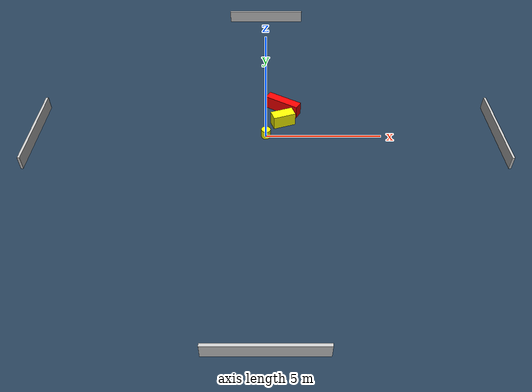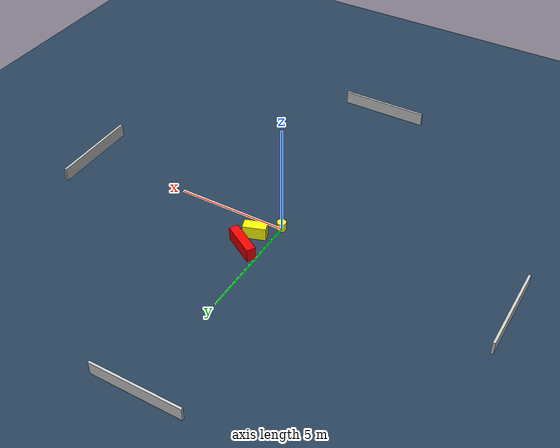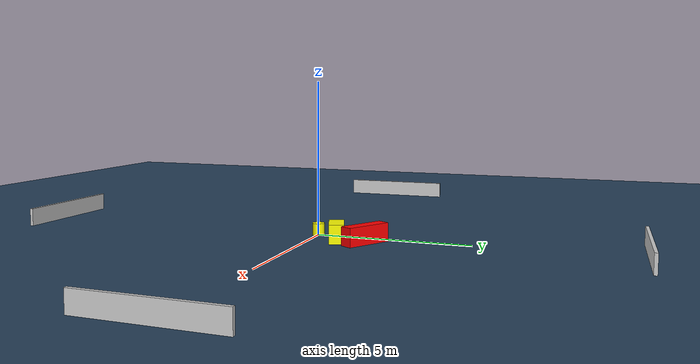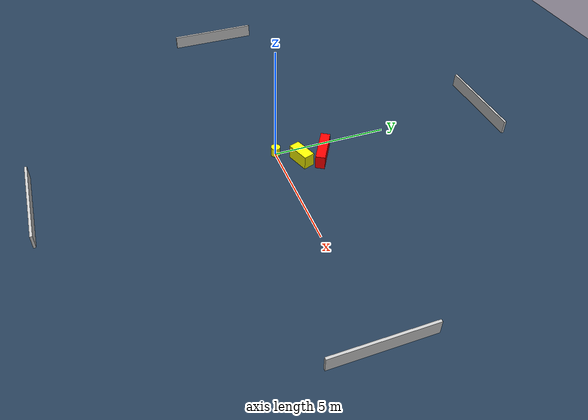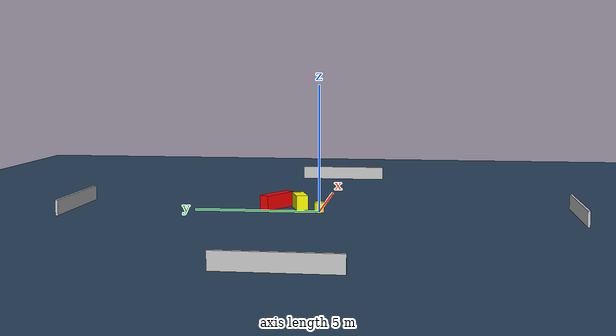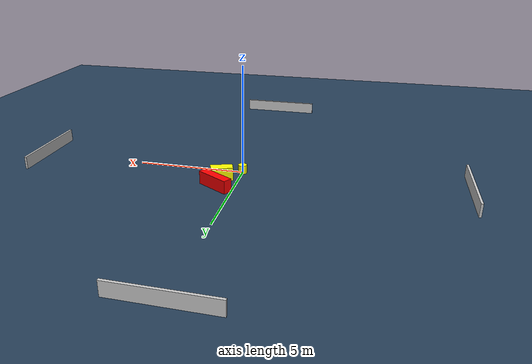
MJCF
<?xml version="1.0" ?>
<mujoco model="generated_environment">
  <option timestep="0.01" integrator="RK4" cone="elliptic"/>
  <default>
    <geom density="1"/>
  </default>
  <asset>
    <texture builtin="gradient" height="3072" name="skybox" rgb1="0.3 0.5 0.7" rgb2="0 0 0" type="skybox" width="512"/>
    <texture builtin="checker" height="300" name="groundplane" rgb1="0.2 0.3 0.4" rgb2="0.1 0.2 0.3" type="2d" width="300"/>
    <material name="groundplane" reflectance="0.2" texrepeat="5 5" texture="groundplane"/>
  </asset>
  <worldbody>
    <light dir="0 0 -1" directional="true" pos="0 0 1.5"/>
    <geom condim="3" friction="0.5 0.005 0.001" material="groundplane" name="floor" pos="0 0 0" size="0 0 0.05" type="plane"/>
    <body name="walls">
      <geom name="wall_1" condim="4" pos="-10.0 0.0 0.3" rgba="0.800000011920929 0.800000011920929 0.800000011920929 1.0" size="0.05 2.0 0.3" type="box"/>
      <geom name="wall_2" condim="4" pos="10.0 0.0 0.3" rgba="0.800000011920929 0.800000011920929 0.800000011920929 1.0" size="0.05 2.0 0.3" type="box"/>
      <geom name="wall_3" condim="4" pos="0.0 -10.0 0.3" rgba="0.800000011920929 0.800000011920929 0.800000011920929 1.0" size="2.0 0.05 0.3" type="box"/>
      <geom name="wall_4" condim="4" pos="0.0 10.0 0.3" rgba="0.800000011920929 0.800000011920929 0.800000011920929 1.0" size="2.0 0.05 0.3" type="box"/>
    </body>
    <body name="robot">
      <joint name="joint_x" type="slide" pos="0 0 0" axis="1 0 0"/>
      <joint name="joint_y" type="slide" pos="0 0 0" axis="0 1 0"/>
      <geom name="robot" type="cylinder" pos="0.0 0.0 0.2" size="0.2 0.2 0.0" mass="5.0" friction="1.0 0.005 0.0001" condim="4" rgba="1.0 1.0 0.0 1.0"/>
    </body>
    <body name="obstacle_1_movable">
      <geom name="obstacle_1_movable" condim="4" pos="0.7565630159493528 0.8826064572693653 0.3" euler="0 0 108.9154175650097" friction="0.0 0.005 0.001" rgba="1.0 1.0 0.0 1.0" size="0.2391314442076206 0.5002259788025828 0.3" type="box" mass="0.1"/>
      <joint type="free"/>
    </body>
    <body name="obstacle_2_static">
      <geom name="obstacle_2_static" condim="4" pos="0.787270752910379 1.8324477810972395 0.3" euler="0 0 239.07085484567307" friction="0.0 0.005 0.001" rgba="1.0 0.0 0.0 1.0" size="0.20291323310445938 0.7926052554246024 0.3" type="box"/>
    </body>
  </worldbody>
  <actuator>
    <motor name="actuator_x" joint="joint_x" gear="1" ctrlrange="-1 1"/>
    <motor name="actuator_y" joint="joint_y" gear="1" ctrlrange="-1 1"/>
  </actuator>
</mujoco>
